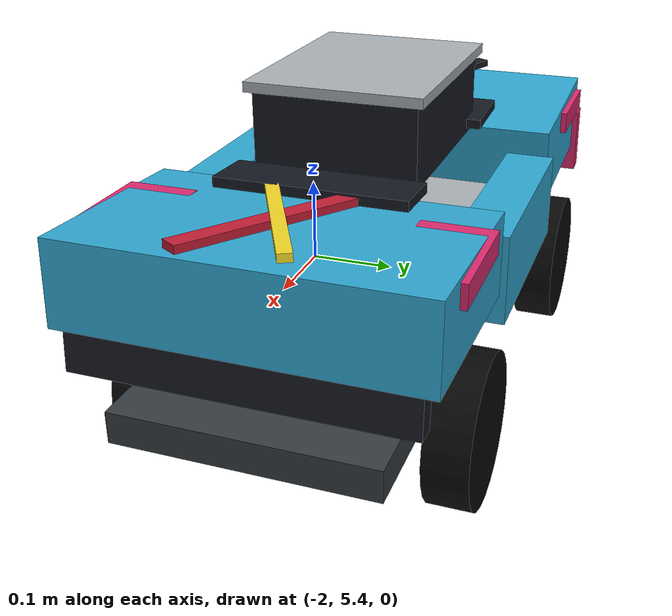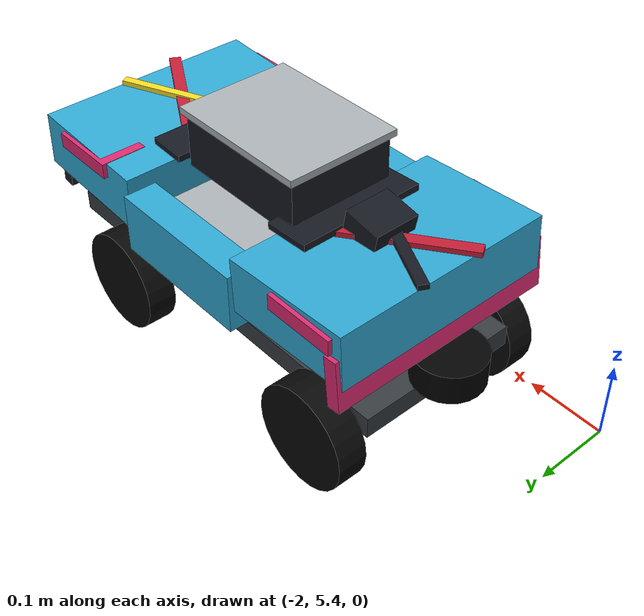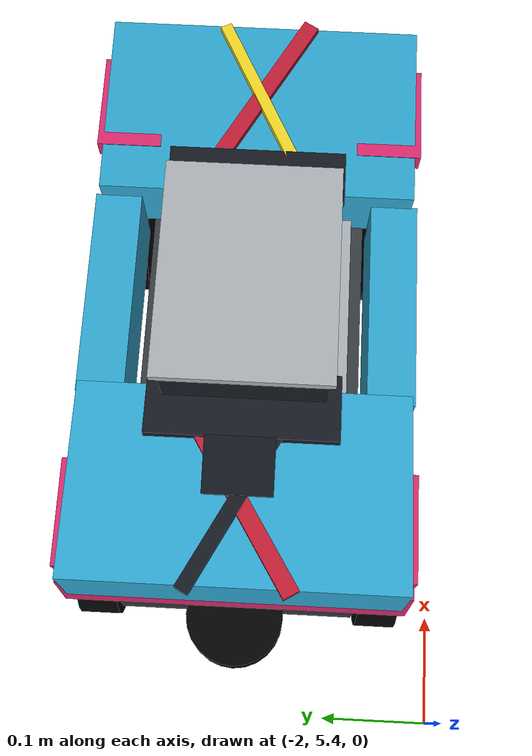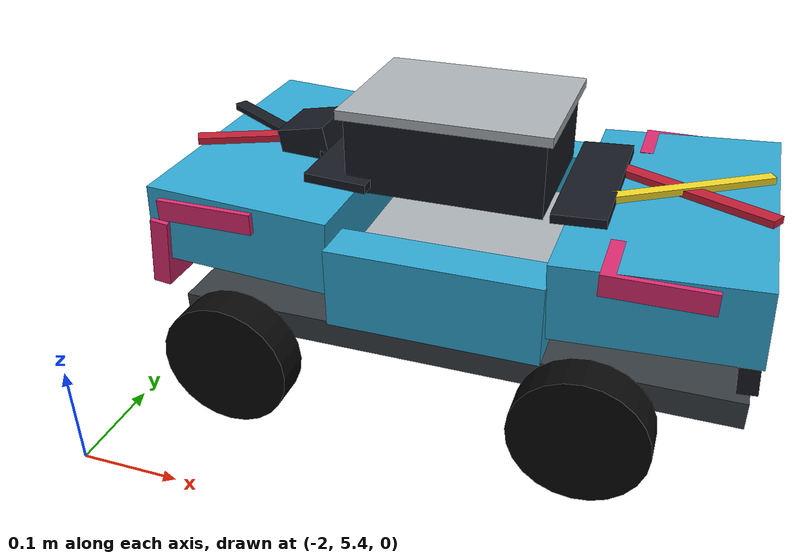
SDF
<sdf version="1.7">
 <world name="kookmin_xycar_track">
  <model name="xycar_ackermann">
   <pose>-1.7000 5.5844 0.0500 0 0 3.1416</pose>
   <link name="chassis">
    <pose>0 0 0.135 0 0 0</pose>
    <inertial>
     <pose>-0.035 0 0 0 0 0</pose>
     <mass>2.2</mass>
     <inertia><ixx>0.055</ixx><ixy>0</ixy><ixz>0</ixz><iyy>0.13</iyy><iyz>0</iyz><izz>0.16</izz></inertia>
    </inertial>
    <collision name="collision">
     <pose>-0.035 0 0 0 0 0</pose>
     <geometry><box><size>0.500 0.200 0.120</size></box></geometry>
    </collision>
    <visual name="chassis_plate">
     <visibility_flags>2</visibility_flags>
     <pose>-0.0350 0.0000 -0.0450 0.00000 0.00000 0.00000</pose>
     <geometry><box><size>0.5000 0.2000 0.0250</size></box></geometry>
     <material><ambient>0.2118 0.2353 0.2549 1</ambient><diffuse>0.2118 0.2353 0.2549 1</diffuse></material>
    </visual>
    <visual name="electronics_lower_deck">
     <visibility_flags>2</visibility_flags>
     <pose>-0.0350 0.0000 0.0250 0.00000 0.00000 0.00000</pose>
     <geometry><box><size>0.2500 0.1700 0.0180</size></box></geometry>
     <material><ambient>0.6745 0.6980 0.7137 1</ambient><diffuse>0.6745 0.6980 0.7137 1</diffuse></material>
    </visual>
    <visual name="shell_front_hood">
     <visibility_flags>2</visibility_flags>
     <pose>0.1350 0.0000 0.0580 0.00000 -0.05500 0.00000</pose>
     <geometry><box><size>0.1600 0.2700 0.0650</size></box></geometry>
     <material><ambient>0.1882 0.6627 0.8275 1</ambient><diffuse>0.1882 0.6627 0.8275 1</diffuse></material>
    </visual>
    <visual name="shell_front_nose">
     <visibility_flags>2</visibility_flags>
     <pose>0.2070 0.0000 0.0350 0.00000 -0.10000 0.00000</pose>
     <geometry><box><size>0.0160 0.2800 0.0600</size></box></geometry>
     <material><ambient>0.8667 0.1647 0.4392 1</ambient><diffuse>0.8667 0.1647 0.4392 1</diffuse></material>
    </visual>
    <visual name="shell_rear_deck">
     <visibility_flags>2</visibility_flags>
     <pose>-0.2050 0.0000 0.0550 0.00000 0.05000 0.00000</pose>
     <geometry><box><size>0.1600 0.2700 0.0650</size></box></geometry>
     <material><ambient>0.1882 0.6627 0.8275 1</ambient><diffuse>0.1882 0.6627 0.8275 1</diffuse></material>
    </visual>
    <visual name="shell_rear_bumper">
     <visibility_flags>2</visibility_flags>
     <pose>-0.2770 0.0000 0.0200 0.00000 0.08000 0.00000</pose>
     <geometry><box><size>0.0160 0.2500 0.0500</size></box></geometry>
     <material><ambient>0.0863 0.0980 0.1333 1</ambient><diffuse>0.0863 0.0980 0.1333 1</diffuse></material>
    </visual>
    <visual name="shell_left_centre_rail">
     <visibility_flags>2</visibility_flags>
     <pose>-0.0350 0.1200 0.0300 0.00000 0.00000 0.00000</pose>
     <geometry><box><size>0.1800 0.0400 0.0700</size></box></geometry>
     <material><ambient>0.1882 0.6627 0.8275 1</ambient><diffuse>0.1882 0.6627 0.8275 1</diffuse></material>
    </visual>
    <visual name="shell_right_centre_rail">
     <visibility_flags>2</visibility_flags>
     <pose>-0.0350 -0.1200 0.0300 0.00000 0.00000 0.00000</pose>
     <geometry><box><size>0.1800 0.0400 0.0700</size></box></geometry>
     <material><ambient>0.1882 0.6627 0.8275 1</ambient><diffuse>0.1882 0.6627 0.8275 1</diffuse></material>
    </visual>
    <visual name="shell_fender_front_left">
     <visibility_flags>2</visibility_flags>
     <pose>0.1600 0.1125 0.0770 0.00000 0.00000 0.00000</pose>
     <geometry><box><size>0.0850 0.0550 0.0180</size></box></geometry>
     <material><ambient>0.8667 0.1647 0.4392 1</ambient><diffuse>0.8667 0.1647 0.4392 1</diffuse></material>
    </visual>
    <visual name="shell_fender_front_right">
     <visibility_flags>2</visibility_flags>
     <pose>0.1600 -0.1125 0.0770 0.00000 0.00000 0.00000</pose>
     <geometry><box><size>0.0850 0.0550 0.0180</size></box></geometry>
     <material><ambient>0.8667 0.1647 0.4392 1</ambient><diffuse>0.8667 0.1647 0.4392 1</diffuse></material>
    </visual>
    <visual name="shell_fender_rear_left">
     <visibility_flags>2</visibility_flags>
     <pose>-0.2050 0.1125 0.0770 0.00000 0.00000 0.00000</pose>
     <geometry><box><size>0.0850 0.0550 0.0180</size></box></geometry>
     <material><ambient>0.8667 0.1647 0.4392 1</ambient><diffuse>0.8667 0.1647 0.4392 1</diffuse></material>
    </visual>
    <visual name="shell_fender_rear_right">
     <visibility_flags>2</visibility_flags>
     <pose>-0.2050 -0.1125 0.0770 0.00000 0.00000 0.00000</pose>
     <geometry><box><size>0.0850 0.0550 0.0180</size></box></geometry>
     <material><ambient>0.8667 0.1647 0.4392 1</ambient><diffuse>0.8667 0.1647 0.4392 1</diffuse></material>
    </visual>
    <visual name="shell_front_window">
     <visibility_flags>2</visibility_flags>
     <pose>0.0700 0.0000 0.0930 0.00000 -0.05500 0.00000</pose>
     <geometry><box><size>0.0550 0.1550 0.0080</size></box></geometry>
     <material><ambient>0.0863 0.0980 0.1333 1</ambient><diffuse>0.0863 0.0980 0.1333 1</diffuse></material>
    </visual>
    <visual name="shell_rear_window">
     <visibility_flags>2</visibility_flags>
     <pose>-0.1350 0.0000 0.0910 0.00000 0.05000 0.00000</pose>
     <geometry><box><size>0.0450 0.1500 0.0080</size></box></geometry>
     <material><ambient>0.0863 0.0980 0.1333 1</ambient><diffuse>0.0863 0.0980 0.1333 1</diffuse></material>
    </visual>
    <visual name="shell_front_red_stripe">
     <visibility_flags>2</visibility_flags>
     <pose>0.1450 0.0000 0.0950 0.00000 -0.05500 0.55000</pose>
     <geometry><box><size>0.1700 0.0140 0.0060</size></box></geometry>
     <material><ambient>0.7686 0.1176 0.2118 1</ambient><diffuse>0.7686 0.1176 0.2118 1</diffuse></material>
    </visual>
    <visual name="shell_front_black_stripe">
     <visibility_flags>2</visibility_flags>
     <pose>0.1450 0.0000 0.0970 0.00000 -0.05500 -0.48000</pose>
     <geometry><box><size>0.1650 0.0120 0.0060</size></box></geometry>
     <material><ambient>0.0863 0.0980 0.1333 1</ambient><diffuse>0.0863 0.0980 0.1333 1</diffuse></material>
    </visual>
    <visual name="shell_rear_red_stripe">
     <visibility_flags>2</visibility_flags>
     <pose>-0.2100 0.0000 0.0940 0.00000 0.05000 -0.52000</pose>
     <geometry><box><size>0.1650 0.0140 0.0060</size></box></geometry>
     <material><ambient>0.7686 0.1176 0.2118 1</ambient><diffuse>0.7686 0.1176 0.2118 1</diffuse></material>
    </visual>
    <visual name="shell_rear_yellow_stripe">
     <visibility_flags>2</visibility_flags>
     <pose>-0.2100 0.0000 0.0960 0.00000 0.05000 0.48000</pose>
     <geometry><box><size>0.1500 0.0100 0.0060</size></box></geometry>
     <material><ambient>0.9569 0.8549 0.1490 1</ambient><diffuse>0.9569 0.8549 0.1490 1</diffuse></material>
    </visual>
    <visual name="mini_pc_body">
     <visibility_flags>2</visibility_flags>
     <pose>-0.0200 0.0000 0.1150 0.00000 0.00000 0.00000</pose>
     <geometry><box><size>0.1700 0.1300 0.0650</size></box></geometry>
     <material><ambient>0.0863 0.0980 0.1333 1</ambient><diffuse>0.0863 0.0980 0.1333 1</diffuse></material>
    </visual>
    <visual name="mini_pc_top_plate">
     <visibility_flags>2</visibility_flags>
     <pose>-0.0200 0.0000 0.1510 0.00000 0.00000 0.00000</pose>
     <geometry><box><size>0.1800 0.1400 0.0080</size></box></geometry>
     <material><ambient>0.6745 0.6980 0.7137 1</ambient><diffuse>0.6745 0.6980 0.7137 1</diffuse></material>
    </visual>
    <visual name="front_camera_body">
     <visibility_flags>2</visibility_flags>
     <pose>0.1200 0.0000 0.0950 0.00000 0.18700 0.00000</pose>
     <geometry><box><size>0.0450 0.0550 0.0400</size></box></geometry>
     <material><ambient>0.0863 0.0980 0.1333 1</ambient><diffuse>0.0863 0.0980 0.1333 1</diffuse></material>
    </visual>
    <visual name="lidar_body">
     <pose>0.225 0 -0.0125 0 0 0</pose>
     <geometry><cylinder><length>0.035</length><radius>0.040</radius></cylinder></geometry>
     <material><ambient>0.01 0.01 0.01 1</ambient><diffuse>0.01 0.01 0.01 1</diffuse></material>
    </visual>
    <collision name="lidar_collision">
     <pose>0.225 0 -0.0125 0 0 0</pose>
     <geometry><cylinder><length>0.035</length><radius>0.040</radius></cylinder></geometry>
    </collision>
    <sensor name="front_camera" type="camera">
     <pose>0.120 0 0.095 0 0.1870 0</pose>
     <topic>/image_raw</topic>
     <update_rate>14</update_rate>
     <camera>
      <camera_info_topic>/camera_info</camera_info_topic>
      <horizontal_fov>1.7032</horizontal_fov>
      <image><width>320</width><height>256</height><format>R8G8B8</format></image>
      <clip><near>0.03</near><far>20</far></clip>
      <visibility_mask>4294967293</visibility_mask>
      <lens>
       <type>gnomonical</type>
       <scale_to_hfov>true</scale_to_hfov>
       <cutoff_angle>1.5707963267948966</cutoff_angle>
       <env_texture_size>512</env_texture_size>
      </lens>
     </camera>
     <always_on>true</always_on>
     <visualize>false</visualize>
    </sensor>
    <sensor name="lidar" type="gpu_lidar">
     <pose>0.225 0 0.005 0 0 0</pose>
     <topic>/scan</topic>
     <update_rate>10</update_rate>
     <ray>
      <scan>
       <horizontal>
        <samples>505</samples>
        <resolution>1</resolution>
        <min_angle>-3.14159</min_angle>
        <max_angle>3.14159</max_angle>
       </horizontal>
      </scan>
      <range><min>0.10</min><max>12.0</max><resolution>0.01</resolution></range>
     </ray>
     <always_on>true</always_on>
     <visualize>false</visualize>
    </sensor>
   </link>
   <link name="front_left_wheel_steering_link">
    <pose>0.16 0.1100 0.06 0 0 0</pose>
    <inertial><mass>0.08</mass><inertia><ixx>0.0002</ixx><iyy>0.0002</iyy><izz>0.0002</izz></inertia></inertial>
   </link>
   <link name="front_right_wheel_steering_link">
    <pose>0.16 -0.1100 0.06 0 0 0</pose>
    <inertial><mass>0.08</mass><inertia><ixx>0.0002</ixx><iyy>0.0002</iyy><izz>0.0002</izz></inertia></inertial>
   </link>
   <link name="front_left_wheel">
    <pose>0.16 0.1225 0.06 -1.5707 0 0</pose>
    <inertial><mass>0.12</mass><inertia><ixx>0.0004</ixx><iyy>0.0004</iyy><izz>0.00025</izz></inertia></inertial>
    <collision name="collision">
     <geometry><cylinder><length>0.035</length><radius>0.06</radius></cylinder></geometry>
    </collision>
    <visual name="visual">
     <visibility_flags>2</visibility_flags>
     <geometry><cylinder><length>0.035</length><radius>0.06</radius></cylinder></geometry>
     <material><ambient>0.03 0.03 0.03 1</ambient><diffuse>0.03 0.03 0.03 1</diffuse></material>
    </visual>
   </link>
   <link name="front_right_wheel">
    <pose>0.16 -0.1225 0.06 -1.5707 0 0</pose>
    <inertial><mass>0.12</mass><inertia><ixx>0.0004</ixx><iyy>0.0004</iyy><izz>0.00025</izz></inertia></inertial>
    <collision name="collision">
     <geometry><cylinder><length>0.035</length><radius>0.06</radius></cylinder></geometry>
    </collision>
    <visual name="visual">
     <visibility_flags>2</visibility_flags>
     <geometry><cylinder><length>0.035</length><radius>0.06</radius></cylinder></geometry>
     <material><ambient>0.03 0.03 0.03 1</ambient><diffuse>0.03 0.03 0.03 1</diffuse></material>
    </visual>
   </link>
   <link name="rear_left_wheel">
    <pose>-0.16 0.1225 0.06 -1.5707 0 0</pose>
    <inertial><mass>0.12</mass><inertia><ixx>0.0004</ixx><iyy>0.0004</iyy><izz>0.00025</izz></inertia></inertial>
    <collision name="collision">
     <geometry><cylinder><length>0.035</length><radius>0.06</radius></cylinder></geometry>
    </collision>
    <visual name="visual">
     <visibility_flags>2</visibility_flags>
     <geometry><cylinder><length>0.035</length><radius>0.06</radius></cylinder></geometry>
     <material><ambient>0.03 0.03 0.03 1</ambient><diffuse>0.03 0.03 0.03 1</diffuse></material>
    </visual>
   </link>
   <link name="rear_right_wheel">
    <pose>-0.16 -0.1225 0.06 -1.5707 0 0</pose>
    <inertial><mass>0.12</mass><inertia><ixx>0.0004</ixx><iyy>0.0004</iyy><izz>0.00025</izz></inertia></inertial>
    <collision name="collision">
     <geometry><cylinder><length>0.035</length><radius>0.06</radius></cylinder></geometry>
    </collision>
    <visual name="visual">
     <visibility_flags>2</visibility_flags>
     <geometry><cylinder><length>0.035</length><radius>0.06</radius></cylinder></geometry>
     <material><ambient>0.03 0.03 0.03 1</ambient><diffuse>0.03 0.03 0.03 1</diffuse></material>
    </visual>
   </link>
   <joint name="front_left_wheel_steering_joint" type="revolute">
    <parent>chassis</parent>
    <child>front_left_wheel_steering_link</child>
    <axis>
     <xyz>0 0 1</xyz>
     <limit><lower>-0.7000</lower><upper>0.7000</upper><velocity>2.0</velocity><effort>8</effort></limit>
    </axis>
   </joint>
   <joint name="front_right_wheel_steering_joint" type="revolute">
    <parent>chassis</parent>
    <child>front_right_wheel_steering_link</child>
    <axis>
     <xyz>0 0 1</xyz>
     <limit><lower>-0.7000</lower><upper>0.7000</upper><velocity>2.0</velocity><effort>8</effort></limit>
    </axis>
   </joint>
   <joint name="front_left_wheel_joint" type="revolute">
    <parent>front_left_wheel_steering_link</parent>
    <child>front_left_wheel</child>
    <axis><xyz>0 0 1</xyz><limit><lower>-1.79769e+308</lower><upper>1.79769e+308</upper></limit></axis>
   </joint>
   <joint name="front_right_wheel_joint" type="revolute">
    <parent>front_right_wheel_steering_link</parent>
    <child>front_right_wheel</child>
    <axis><xyz>0 0 1</xyz><limit><lower>-1.79769e+308</lower><upper>1.79769e+308</upper></limit></axis>
   </joint>
   <joint name="rear_left_wheel_joint" type="revolute">
    <parent>chassis</parent>
    <child>rear_left_wheel</child>
    <axis><xyz>0 0 1</xyz><limit><lower>-1.79769e+308</lower><upper>1.79769e+308</upper></limit></axis>
   </joint>
   <joint name="rear_right_wheel_joint" type="revolute">
    <parent>chassis</parent>
    <child>rear_right_wheel</child>
    <axis><xyz>0 0 1</xyz><limit><lower>-1.79769e+308</lower><upper>1.79769e+308</upper></limit></axis>
   </joint>
   <plugin filename="gz-sim-ackermann-steering-system" name="gz::sim::systems::AckermannSteering">
    <left_joint>front_left_wheel_joint</left_joint>
    <left_joint>rear_left_wheel_joint</left_joint>
    <right_joint>front_right_wheel_joint</right_joint>
    <right_joint>rear_right_wheel_joint</right_joint>
    <left_steering_joint>front_left_wheel_steering_joint</left_steering_joint>
    <right_steering_joint>front_right_wheel_steering_joint</right_steering_joint>
    <kingpin_width>0.220</kingpin_width>
    <steering_limit>0.5600</steering_limit>
    <wheel_base>0.32</wheel_base>
    <wheel_separation>0.245</wheel_separation>
    <wheel_radius>0.06</wheel_radius>
    <min_velocity>-4.0000</min_velocity>
    <max_velocity>8.0000</max_velocity>
    <min_acceleration>-2</min_acceleration>
    <max_acceleration>2</max_acceleration>
   </plugin>
  </model>
 </world>
</sdf>
